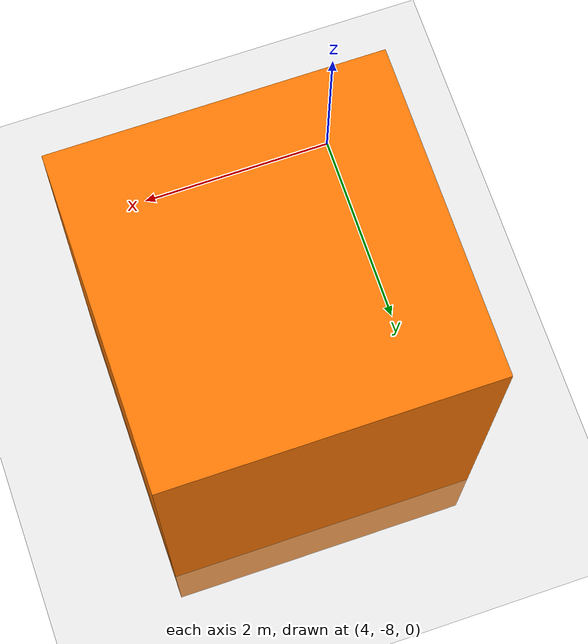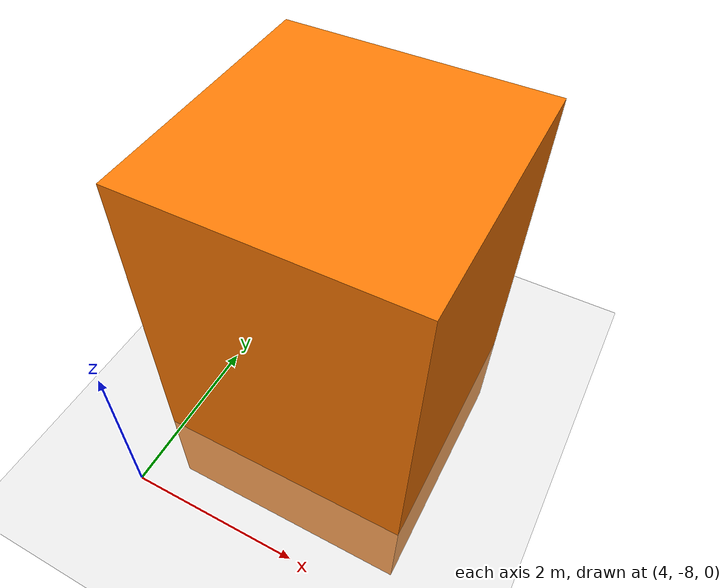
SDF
<?xml version="1.0" ?>
<sdf version='1.6'>
  <world name='default'>
    <plugin name="ros_interface_plugin" filename="librotors_gazebo_ros_interface_plugin.so"/>
    <physics type='ode'>
      <ode>
        <solver>
          <type>quick</type>
          <iters>1000</iters>
          <sor>1.3</sor>
        </solver>
        <constraints>
          <cfm>0</cfm>
          <erp>0.2</erp>
          <contact_max_correcting_vel>100</contact_max_correcting_vel>
          <contact_surface_layer>0.001</contact_surface_layer>
        </constraints>
      </ode>
      <max_step_size>0.01</max_step_size>
      <real_time_factor>1</real_time_factor>
      <real_time_update_rate>100</real_time_update_rate>
      <gravity>0 0 -9.8</gravity>
    </physics>

    <light name='sun' type='directional'>
      <cast_shadows>1</cast_shadows>
      <pose frame=''>0 0 10 0 -0 0</pose>
      <diffuse>0.8 0.8 0.8 1</diffuse>
      <specular>0.1 0.1 0.1 1</specular>
      <attenuation>
        <range>1000</range>
        <constant>0.9</constant>
        <linear>0.01</linear>
        <quadratic>0.001</quadratic>
      </attenuation>
      <direction>-0.5 0.5 -1</direction>
    </light>
    <model name='ground_plane'>
      <static>1</static>
      <link name='link'>
        <collision name='collision'>
          <geometry>
            <plane>
              <normal>0 0 1</normal>
              <size>100 100</size>
            </plane>
          </geometry>
          <surface>
            <friction>
              <ode>
                <mu>100</mu>
                <mu2>50</mu2>
              </ode>
              <torsional>
                <ode/>
              </torsional>
            </friction>
            <contact>
              <ode/>
            </contact>
            <bounce/>
          </surface>
          <max_contacts>10</max_contacts>
        </collision>
        <visual name='visual'>
          <cast_shadows>0</cast_shadows>
          <geometry>
            <plane>
              <normal>0 0 1</normal>
              <size>100 100</size>
            </plane>
          </geometry>
          <material>
            <script>
              <uri>file://media/materials/scripts/gazebo.material</uri>
              <name>Gazebo/Grey</name>
            </script>
          </material>
        </visual>
        <self_collide>0</self_collide>
        <kinematic>0</kinematic>
        <gravity>1</gravity>
      </link>
    </model>
    <gravity>0 0 -9.8</gravity>
    <magnetic_field>6e-06 2.3e-05 -4.2e-05</magnetic_field>
    <atmosphere type='adiabatic'/>

    <scene>
      <ambient>0.4 0.4 0.4 1</ambient>
      <background>0.7 0.7 0.7 1</background>
      <shadows>1</shadows>
    </scene>
    <spherical_coordinates>
      <surface_model>EARTH_WGS84</surface_model>
      <latitude_deg>0</latitude_deg>
      <longitude_deg>0</longitude_deg>
      <elevation>0</elevation>
      <heading_deg>0</heading_deg>
    </spherical_coordinates>
    <model name='Maze_House'>
      <pose frame=''>-0.083649 -5.67478 0 0 -0 0</pose>
      <link name='Wall_11'>
        <collision name='Wall_11_Collision'>
          <geometry>
            <box>
              <size>3.05 3.05 5.0</size>
            </box>
          </geometry>
          <pose frame=''>0 0 1.25 0 -0 0</pose>
          <max_contacts>10</max_contacts>
          <surface>
            <contact>
              <ode/>
            </contact>
            <bounce/>
            <friction>
              <torsional>
                <ode/>
              </torsional>
              <ode/>
            </friction>
          </surface>
        </collision>
        <visual name='Wall_11_Visual'>
          <pose frame=''>0 0 1.25 0 -0 0</pose>
          <geometry>
            <box>
              <size>3.05 3.05 5.0</size>
            </box>
          </geometry>
          <material>
            <script>
              <uri>file://media/materials/scripts/gazebo.material</uri>
              <name>Gazebo/Grey</name>
            </script>
            <ambient>0.996078 0.47451 0.0196078 1</ambient>
          </material>
        </visual>
        <pose frame=''>5.47185 0 0 0 -0 0</pose>
        <self_collide>0</self_collide>
        <kinematic>0</kinematic>
        <gravity>1</gravity>
      </link>
    </model>
    <model name='ground_plane'>
      <pose frame=''>0 0 0 0 -0 0</pose>
      <scale>1 1 1</scale>
        <link name='link'>
          <pose frame=''>0 0 0 0 -0 0</pose>
          <velocity>0 0 0 0 -0 0</velocity>
          <acceleration>0 0 0 0 -0 0</acceleration>
          <wrench>0 0 0 0 -0 0</wrench>
        </link>
    </model>
    <gui fullscreen='0'>
      <camera name='user_camera'>
        <pose frame=''>-6.3846 -7.82833 34.6894 0 1.4978 -0.489903</pose>
        <view_controller>orbit</view_controller>
        <projection_type>perspective</projection_type>
      </camera>
    </gui>
  </world>
</sdf>
